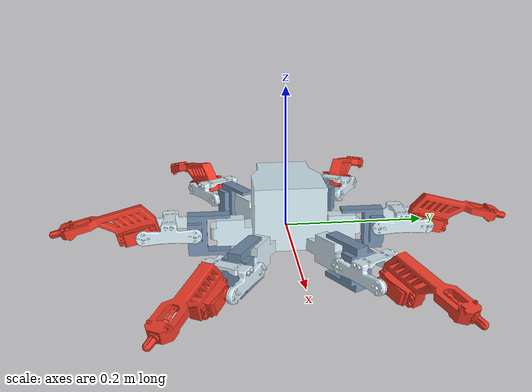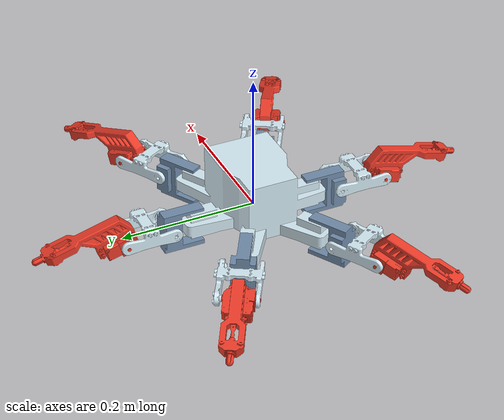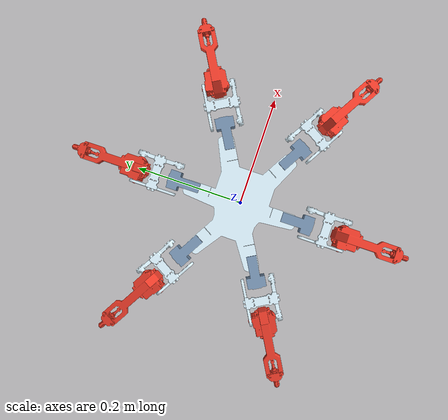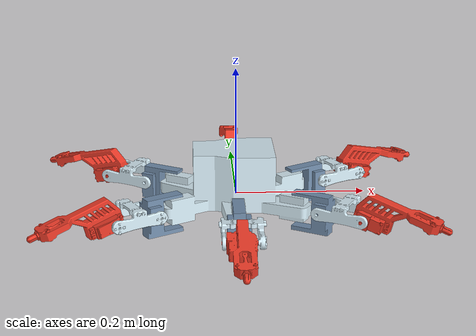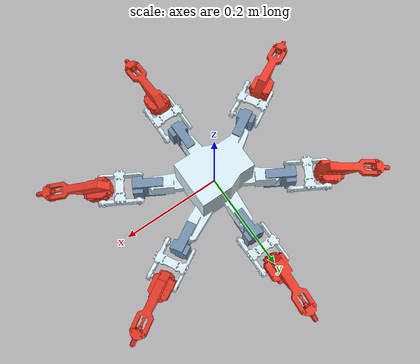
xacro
<?xml version="1.0"?>
<robot xmlns:xacro="http://www.ros.org/xacro" name="hexumi">

  <material name="black_pla">
    <color rgba="0.8 0.8 0.8 1" />
  </material>

  <material name="red_pla">
    <color rgba="0.9176470588235294 0.22745098039215686 0.1568627450980392 1" />
  </material>

  <material name="white_pla">
    <color rgba="0.8392156862745098 0.9254901960784314 0.9647058823529412 1" />
  </material>

  <material name="grey_pla">
    <color rgba="0.4470588235294118 0.5568627450980392 0.6745098039215687 1" />
  </material>

  <!-- parameters -->
  <xacro:property name="body_length_front_x" value="0.08877" />
  <xacro:property name="body_length_back_x" value="0.1307" />
  <xacro:property name="body_length_y" value="0.23047" />
  <xacro:property name="coxa_length" value="0.04" />
  <xacro:property name="femur_length" value="0.07" />
  <xacro:property name="tibia_length" value="0.13" />
  <xacro:property name="tibia_angle_offset" value="${-pi / 12}" />

  <xacro:property name="body_mass" value="1.07064" />
  <xacro:property name="coxa_mass" value="0.011045" />
  <xacro:property name="femur_mass" value="0.00514" />
  <xacro:property name="tibia_mass" value="0.0013722" />

  <xacro:property name="L1_origin_radius" value="0.11" />
  <xacro:property name="L1_origin_angle" value="${pi / 6}" />
  <xacro:property name="L1_origin_z" value="-0.0075" />

  <xacro:property name="L2_origin_radius" value="0.09" />
  <xacro:property name="L2_origin_angle" value="${pi / 2}" />
  <xacro:property name="L2_origin_z" value="-0.0075" />

  <xacro:property name="L3_origin_radius" value="0.11" />
  <xacro:property name="L3_origin_angle" value="${pi * 5 / 6}" />
  <xacro:property name="L3_origin_z" value="-0.0075" />

  <xacro:property name="R1_origin_radius" value="0.11" />
  <xacro:property name="R1_origin_angle" value="-${pi / 6}" />
  <xacro:property name="R1_origin_z" value="-0.0075" />

  <xacro:property name="R2_origin_radius" value="0.09" />
  <xacro:property name="R2_origin_angle" value="-${pi / 2}" />
  <xacro:property name="R2_origin_z" value="-0.0075" />

  <xacro:property name="R3_origin_radius" value="0.11" />
  <xacro:property name="R3_origin_angle" value="-${pi * 5 / 6}" />
  <xacro:property name="R3_origin_z" value="-0.0075" />

  <!-- inertia stuff -->
  <xacro:property name="body_x" value="-0.02416" />
  <xacro:property name="body_y" value="0.00018" />
  <xacro:property name="body_z" value="0.00977" />
  <xacro:property name="body_roll" value="0" />
  <xacro:property name="body_pitch" value="0" />
  <xacro:property name="body_yaw" value="0" />
  <xacro:property name="body_ixx" value="0.00329495565" />
  <xacro:property name="body_iyy" value="0.00422550506" />
  <xacro:property name="body_izz" value="0.00610423987" />
  <xacro:property name="body_ixy" value="-0.00000818428" />
  <xacro:property name="body_ixz" value="-0.00007183633" />
  <xacro:property name="body_iyz" value="-0.00002312133" />

  <xacro:property name="coxa_L_x" value="-0.00708" />
  <xacro:property name="coxa_L_y" value="-0.00983" />
  <xacro:property name="coxa_L_z" value="-0.02613" />
  <xacro:property name="coxa_L_roll" value="0" />
  <xacro:property name="coxa_L_pitch" value="0" />
  <xacro:property name="coxa_L_yaw" value="0" />
  <xacro:property name="coxa_L_ixx" value="0.00004537142" />
  <xacro:property name="coxa_L_iyy" value="0.00003512301" />
  <xacro:property name="coxa_L_izz" value="0.00005818289" />
  <xacro:property name="coxa_L_ixy" value="0.00000080668" />
  <xacro:property name="coxa_L_ixz" value="0.00000025971" />
  <xacro:property name="coxa_L_iyz" value="0.00000033767" />

  <xacro:property name="coxa_R_x" value="-0.00708" />
  <xacro:property name="coxa_R_y" value="-0.00983" />
  <xacro:property name="coxa_R_z" value="0.02613" />
  <xacro:property name="coxa_R_roll" value="0" />
  <xacro:property name="coxa_R_pitch" value="0" />
  <xacro:property name="coxa_R_yaw" value="0" />
  <xacro:property name="coxa_R_ixx" value="0.00004537796" />
  <xacro:property name="coxa_R_iyy" value="0.00003512955" />
  <xacro:property name="coxa_R_izz" value="0.00005818289" />
  <xacro:property name="coxa_R_ixy" value="0.00000080667" />
  <xacro:property name="coxa_R_ixz" value="-0.00000026225" />
  <xacro:property name="coxa_R_iyz" value="-0.00000034651" />

  <xacro:property name="femur_L_x" value="0.035" />
  <xacro:property name="femur_L_y" value="0.00305" />
  <xacro:property name="femur_L_z" value="-0.03111" />
  <xacro:property name="femur_L_roll" value="0" />
  <xacro:property name="femur_L_pitch" value="0" />
  <xacro:property name="femur_L_yaw" value="0" />
  <xacro:property name="femur_L_ixx" value="0.00003795796" />
  <xacro:property name="femur_L_iyy" value="0.00007254033" />
  <xacro:property name="femur_L_izz" value="0.00004000019" />
  <xacro:property name="femur_L_ixy" value="0" />
  <xacro:property name="femur_L_ixz" value="0" />
  <xacro:property name="femur_L_iyz" value="-0.00000021619" />

  <xacro:property name="femur_R_x" value="0.035" />
  <xacro:property name="femur_R_y" value="0.00305" />
  <xacro:property name="femur_R_z" value="0.03111" />
  <xacro:property name="femur_R_roll" value="0" />
  <xacro:property name="femur_R_pitch" value="0" />
  <xacro:property name="femur_R_yaw" value="0" />
  <xacro:property name="femur_R_ixx" value="0.00003795796" />
  <xacro:property name="femur_R_iyy" value="0.00007254033" />
  <xacro:property name="femur_R_izz" value="0.00004000019" />
  <xacro:property name="femur_R_ixy" value="0" />
  <xacro:property name="femur_R_ixz" value="0" />
  <xacro:property name="femur_R_iyz" value="0.00000021619" />

  <xacro:property name="tibia_L_x" value="0.0286" />
  <xacro:property name="tibia_L_y" value="0.0114" />
  <xacro:property name="tibia_L_z" value="-0.00028" />
  <xacro:property name="tibia_L_roll" value="0" />
  <xacro:property name="tibia_L_pitch" value="0" />
  <xacro:property name="tibia_L_yaw" value="0" />
  <xacro:property name="tibia_L_ixx" value="0.00004499197" />
  <xacro:property name="tibia_L_iyy" value="0.00019412525" />
  <xacro:property name="tibia_L_izz" value="0.00021338222" />
  <xacro:property name="tibia_L_ixy" value="-0.00005286863" />
  <xacro:property name="tibia_L_ixz" value="-0.00000107478" />
  <xacro:property name="tibia_L_iyz" value="-0.00000044041" />

  <xacro:property name="tibia_R_x" value="0.0286" />
  <xacro:property name="tibia_R_y" value="0.0114" />
  <xacro:property name="tibia_R_z" value="0.00028" />
  <xacro:property name="tibia_R_roll" value="0" />
  <xacro:property name="tibia_R_pitch" value="0" />
  <xacro:property name="tibia_R_yaw" value="0" />
  <xacro:property name="tibia_R_ixx" value="0.00004499197" />
  <xacro:property name="tibia_R_iyy" value="0.00019412525" />
  <xacro:property name="tibia_R_izz" value="0.00021338222" />
  <xacro:property name="tibia_R_ixy" value="-0.00005286863" />
  <xacro:property name="tibia_R_ixz" value="0.00000107479" />
  <xacro:property name="tibia_R_iyz" value="0.00000044041" />

  <!-- inertia macro -->

  <xacro:macro name="inertia_macro"
    params="mass
                                              x_L
                                              y_L
                                              z_L
                                              roll_L
                                              pitch_L
                                              yaw_L
                                              ixx_L
                                              iyy_L
                                              izz_L
                                              ixy_L
                                              ixz_L
                                              iyz_L

                                              x_R
                                              y_R
                                              z_R
                                              roll_R
                                              pitch_R
                                              yaw_R
                                              ixx_R
                                              iyy_R
                                              izz_R
                                              ixy_R
                                              ixz_R
                                              iyz_R">
    <xacro:if value="${side == 'L'}">
      <inertial>
        <origin xyz="${x_L} ${y_L} ${z_L}" rpy="${roll_L} ${pitch_L} ${yaw_L}" />
        <mass value="${mass}" />
        <inertia ixx="${ixx_L}" iyy="${iyy_L}" izz="${izz_L}" ixy="${ixy_L}" ixz="${ixz_L}"
          iyz="${iyz_L}" />
      </inertial>
    </xacro:if>
    <xacro:if value="${side == 'R'}">
      <inertial>
        <origin xyz="${x_R} ${y_R} ${z_R}" rpy="${roll_R} ${pitch_R} ${yaw_R}" />
        <mass value="${mass}" />
        <inertia ixx="${ixx_R}" iyy="${iyy_R}" izz="${izz_R}" ixy="${ixy_R}" ixz="${ixz_R}"
          iyz="${iyz_R}" />
      </inertial>
    </xacro:if>
  </xacro:macro>

  <!-- Build the body frame -->
  <link name="base_link" />

  <joint name="base_joint" type="fixed">
    <parent link="base_link" />
    <child link="body" />
    <origin xyz="0 0 0" rpy="0 0 0" />
  </joint>
  <link name="body">
    <collision>
      <origin xyz="0 0 0" rpy="0 0 0" />
      <geometry>
        <mesh filename="file://$(find hexumi_description)/meshes/collision/BODY_COLLISIONS.stl"
          scale="0.001 0.001 0.001" />
      </geometry>
    </collision>
    <visual>
      <origin xyz="0 0 0" rpy="0 0 0" />
      <geometry>
        <mesh filename="file://$(find hexumi_description)/meshes/visual/BODY.stl"
          scale="0.001 0.001 0.001" />
      </geometry>
      <material name="white_pla" />
    </visual>
    <inertial>
      <origin xyz="${body_x} ${body_y} ${body_z}" rpy="${body_roll} ${body_pitch} ${body_yaw}" />
      <mass value="${body_mass}" />
      <inertia ixx="${body_ixx}" iyy="${body_iyy}" izz="${body_izz}" ixy="${body_ixy}"
        ixz="${body_ixz}" iyz="${body_iyz}" />
    </inertial>
  </link>

  <!-- Joint properties -->
  <xacro:property name="joint_lower_limit" value="-${pi}" />
  <xacro:property name="joint_upper_limit" value="${pi}" />
  <xacro:property name="joint_effort" value="100000" />
  <xacro:property name="joint_velocity" value="10" />

  <!-- Leg macro -->
  <xacro:macro name="leg" params="side position x y angle">
    <joint name="virtual_body_joint_${side}${position}" type="fixed">
      <origin xyz="0 0 0" rpy="0 0 0" />
      <parent link="body" />
      <child link="hip_${side}${position}" />
    </joint>

    <link name="hip_${side}${position}">
      <inertial>
        <origin xyz="0 0 0" rpy="0 0 0" />
        <mass value="0" />
        <inertia ixx="0" iyy="0" izz="0" ixy="0" ixz="0" iyz="0" />
      </inertial>
    </link>

    <!-- coxa -->
    <joint name="coxa_joint_${side}${position}" type="revolute">
      <origin xyz="${x} ${y} 0" rpy="0 0 ${angle}" />
      <parent link="hip_${side}${position}" />
      <child link="coxa_${side}${position}" />
      <axis xyz="0 0 1" />
      <limit lower="${joint_lower_limit}" upper="${joint_upper_limit}" effort="${joint_effort}"
        velocity="${joint_velocity}" />
    </joint>
    <link name="coxa_${side}${position}">
      <collision>
        <origin xyz="0 0 0.002" rpy="0 0 0" />
        <geometry>
          <mesh filename="file://$(find hexumi_description)/meshes/collision/COXA_COLLISIONS.stl"
            scale="0.001 0.001 0.001" />
        </geometry>
      </collision>
      <visual>
        <origin xyz="0 0 0.002" rpy="0 0 0" />
        <geometry>
          <mesh filename="file://$(find hexumi_description)/meshes/visual/COXA_${side}.stl"
            scale="0.001 0.001 0.001" />
        </geometry>
        <material name="grey_pla" />
      </visual>
      <xacro:inertia_macro mass="${coxa_mass}"
        x_L="${coxa_L_x}"
        y_L="${coxa_L_y}"
        z_L="${coxa_L_z}"
        roll_L="${coxa_L_roll}"
        pitch_L="${coxa_L_pitch}"
        yaw_L="${coxa_L_yaw}"
        ixx_L="${coxa_L_ixx}"
        iyy_L="${coxa_L_iyy}"
        izz_L="${coxa_L_izz}"
        ixy_L="${coxa_L_ixy}"
        ixz_L="${coxa_L_ixz}"
        iyz_L="${coxa_L_iyz}"
        x_R="${coxa_R_x}"
        y_R="${coxa_R_y}"
        z_R="${coxa_R_z}"
        roll_R="${coxa_R_roll}"
        pitch_R="${coxa_R_pitch}"
        yaw_R="${coxa_R_yaw}"
        ixx_R="${coxa_R_ixx}"
        iyy_R="${coxa_R_iyy}"
        izz_R="${coxa_R_izz}"
        ixy_R="${coxa_R_ixy}"
        ixz_R="${coxa_R_ixz}"
        iyz_R="${coxa_R_iyz}" />
    </link>

    <!-- femur -->
    <joint name="femur_joint_${side}${position}" type="revolute">
      <origin xyz="${coxa_length} 0 0" rpy="${pi/2} 0 0" />
      <parent link="coxa_${side}${position}" />
      <child link="femur_${side}${position}" />
      <axis xyz="0 0 1" />
      <limit lower="${joint_lower_limit}" upper="${joint_upper_limit}" effort="${joint_effort}"
        velocity="${joint_velocity}" />
    </joint>
    <link name="femur_${side}${position}">
      <visual>
        <origin xyz="0 0 0" rpy="0 0 0" />
        <geometry>
          <mesh filename="file://$(find hexumi_description)/meshes/visual/FEMUR_${side}.stl"
            scale="0.001 0.001 0.001" />
        </geometry>
        <material name="white_pla" />
      </visual>
      <collision>
        <origin xyz="0 0 0" rpy="0 0 0" />
        <geometry>
          <mesh
            filename="file://$(find hexumi_description)/meshes/collision/FEMUR_${side}_COLLISIONS.stl"
            scale="0.001 0.001 0.001" />
        </geometry>
      </collision>
      <xacro:inertia_macro mass="${femur_mass}"
        x_L="${femur_L_x}"
        y_L="${femur_L_y}"
        z_L="${femur_L_z}"
        roll_L="${femur_L_roll}"
        pitch_L="${femur_L_pitch}"
        yaw_L="${femur_L_yaw}"
        ixx_L="${femur_L_ixx}"
        iyy_L="${femur_L_iyy}"
        izz_L="${femur_L_izz}"
        ixy_L="${femur_L_ixy}"
        ixz_L="${femur_L_ixz}"
        iyz_L="${femur_L_iyz}"
        x_R="${femur_R_x}"
        y_R="${femur_R_y}"
        z_R="${femur_R_z}"
        roll_R="${femur_R_roll}"
        pitch_R="${femur_R_pitch}"
        yaw_R="${femur_R_yaw}"
        ixx_R="${femur_R_ixx}"
        iyy_R="${femur_R_iyy}"
        izz_R="${femur_R_izz}"
        ixy_R="${femur_R_ixy}"
        ixz_R="${femur_R_ixz}"
        iyz_R="${femur_R_iyz}" />
    </link>

    <!-- tibia -->
    <joint name="tibia_joint_${side}${position}" type="revolute">
      <origin xyz="${femur_length} 0 0" rpy="0 0 0" />
      <parent link="femur_${side}${position}" />
      <child link="tibia_${side}${position}" />
      <axis xyz="0 0 1" />
      <limit lower="${joint_lower_limit}" upper="${joint_upper_limit}" effort="${joint_effort}"
        velocity="${joint_velocity}" />
    </joint>
    <link name="tibia_${side}${position}">
      <visual>
        <origin xyz="0 0 0" rpy="0 0 ${tibia_angle_offset}" />
        <geometry>
          <mesh filename="file://$(find hexumi_description)/meshes/visual/TIBIA_${side}.stl"
            scale="0.001 0.001 0.001" />
        </geometry>
        <material name="red_pla" />
      </visual>
      <collision>
        <origin xyz="0 0 0" rpy="0 0 ${tibia_angle_offset}" />
        <geometry>
          <mesh filename="file://$(find hexumi_description)/meshes/collision/TIBIA_COLLISIONS.stl"
            scale="0.001 0.001 0.001" />
        </geometry>
      </collision>
      <xacro:inertia_macro mass="${tibia_mass}"
        x_L="${tibia_L_x}"
        y_L="${tibia_L_y}"
        z_L="${tibia_L_z}"
        roll_L="${tibia_L_roll}"
        pitch_L="${tibia_L_pitch}"
        yaw_L="${tibia_L_yaw}"
        ixx_L="${tibia_L_ixx}"
        iyy_L="${tibia_L_iyy}"
        izz_L="${tibia_L_izz}"
        ixy_L="${tibia_L_ixy}"
        ixz_L="${tibia_L_ixz}"
        iyz_L="${tibia_L_iyz}"
        x_R="${tibia_R_x}"
        y_R="${tibia_R_y}"
        z_R="${tibia_R_z}"
        roll_R="${tibia_R_roll}"
        pitch_R="${tibia_R_pitch}"
        yaw_R="${tibia_R_yaw}"
        ixx_R="${tibia_R_ixx}"
        iyy_R="${tibia_R_iyy}"
        izz_R="${tibia_R_izz}"
        ixy_R="${tibia_R_ixy}"
        ixz_R="${tibia_R_ixz}"
        iyz_R="${tibia_R_iyz}" />
    </link>

    <joint name="end_effector_joint_${side}${position}" type="fixed">
      <origin xyz="${tibia_length} 0 0" rpy="0 0 0" />
      <parent link="tibia_${side}${position}" />
      <child link="end_effector_${side}${position}" />
    </joint>

    <link name="end_effector_${side}${position}">
      <inertial>
        <origin xyz="0 0 0" rpy="0 0 0" />
        <mass value="0" />
        <inertia ixx="0" iyy="0" izz="0" ixy="0" ixz="0" iyz="0" />
      </inertial>
    </link>
  </xacro:macro>

  <!-- Build robot model -->

  <xacro:macro name="leg_polar" params="side position R phi">
    <xacro:leg side="${side}" position="${position}" x="${R * cos(phi)}" y="${R * sin(phi)}"
      angle="${phi}" />
  </xacro:macro>

  <xacro:leg_polar side="R" position="1" R="${R1_origin_radius}" phi="${R1_origin_angle}" />
  <xacro:leg_polar side="R" position="2" R="${R2_origin_radius}" phi="${R2_origin_angle}" />
  <xacro:leg_polar side="R" position="3" R="${R3_origin_radius}" phi="${R3_origin_angle}" />

  <xacro:leg_polar side="L" position="1" R="${L1_origin_radius}" phi="${L1_origin_angle}" />
  <xacro:leg_polar side="L" position="2" R="${L2_origin_radius}" phi="${L2_origin_angle}" />
  <xacro:leg_polar side="L" position="3" R="${L3_origin_radius}" phi="${L3_origin_angle}" />

</robot>
